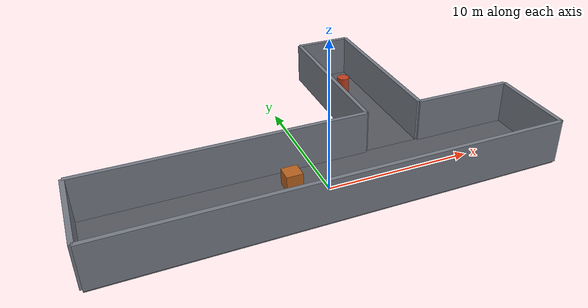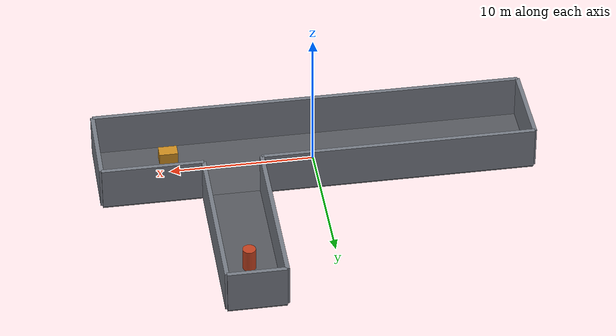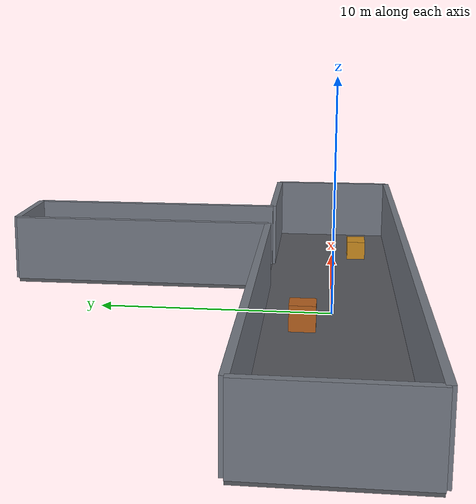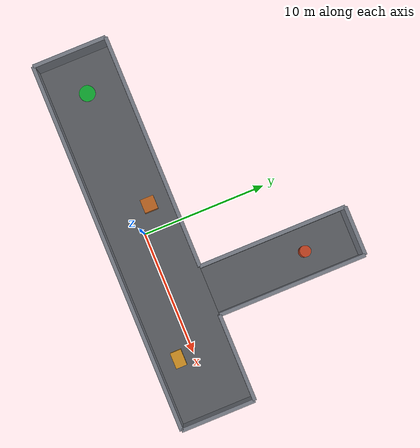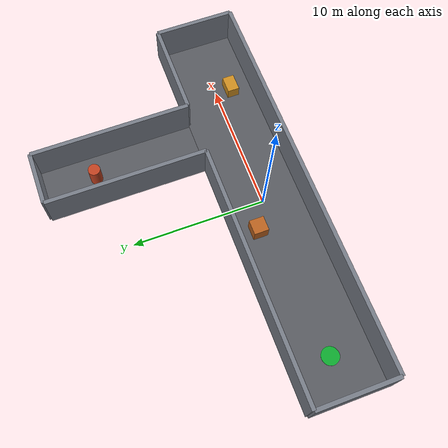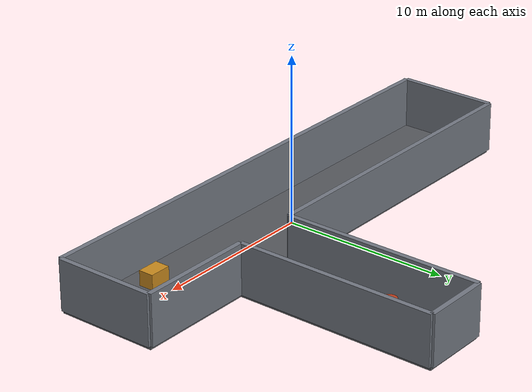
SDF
<?xml version="1.0" ?>
<sdf version="1.9">
  <world name="simple_cavern">
    <physics name="step" type="ignored">
      <max_step_size>0.001</max_step_size>
      <real_time_factor>1.0</real_time_factor>
    </physics>
    <plugin filename="gz-sim-physics-system" name="gz::sim::systems::Physics"/>
    <plugin filename="gz-sim-user-commands-system" name="gz::sim::systems::UserCommands"/>
    <plugin filename="gz-sim-scene-broadcaster-system" name="gz::sim::systems::SceneBroadcaster"/>

    <gui fullscreen="false">
      <plugin filename="MinimalScene" name="3D View">
        <gz-gui><title>简易地下洞室导航训练场</title></gz-gui>
        <engine>ogre2</engine>
        <scene>scene</scene>
        <ambient_light>0.35 0.37 0.42</ambient_light>
        <background_color>0.08 0.09 0.12</background_color>
        <camera_pose>0 4 38 0 1.5707 0</camera_pose>
      </plugin>
      <plugin filename="EntityContextMenuPlugin" name="Entity context menu">
        <gz-gui><property key="state" type="string">floating</property><property key="width" type="double">5</property><property key="height" type="double">5</property><property key="showTitleBar" type="bool">false</property></gz-gui>
      </plugin>
      <plugin filename="GzSceneManager" name="Scene Manager">
        <gz-gui><property key="state" type="string">floating</property><property key="width" type="double">5</property><property key="height" type="double">5</property><property key="showTitleBar" type="bool">false</property></gz-gui>
      </plugin>
      <plugin filename="InteractiveViewControl" name="Interactive view control">
        <gz-gui><property key="state" type="string">floating</property><property key="width" type="double">5</property><property key="height" type="double">5</property><property key="showTitleBar" type="bool">false</property></gz-gui>
      </plugin>
      <plugin filename="CameraTracking" name="Camera Tracking">
        <gz-gui><property key="state" type="string">floating</property><property key="width" type="double">5</property><property key="height" type="double">5</property><property key="showTitleBar" type="bool">false</property></gz-gui>
      </plugin>
    </gui>

    <scene>
      <ambient>0.35 0.37 0.42 1</ambient>
      <background>0.08 0.09 0.12 1</background>
      <shadows>true</shadows>
    </scene>
    <light type="directional" name="work_light">
      <pose>0 0 18 0 0 0</pose>
      <diffuse>0.75 0.78 0.85 1</diffuse>
      <specular>0.2 0.2 0.2 1</specular>
      <direction>-0.3 0.2 -1</direction>
    </light>

    <!-- Main passage: 30 m long and 6 m wide -->
    <model name="main_floor"><static>true</static><link name="link"><pose>0 0 -0.1 0 0 0</pose>
      <collision name="collision"><geometry><box><size>30 6 0.2</size></box></geometry></collision>
      <visual name="visual"><geometry><box><size>30 6 0.2</size></box></geometry><material><ambient>0.24 0.25 0.27 1</ambient><diffuse>0.34 0.35 0.37 1</diffuse></material></visual>
    </link></model>
    <!-- T branch floor -->
    <model name="branch_floor"><static>true</static><link name="link"><pose>6 9 -0.1 0 0 0</pose>
      <collision name="collision"><geometry><box><size>4 12 0.2</size></box></geometry></collision>
      <visual name="visual"><geometry><box><size>4 12 0.2</size></box></geometry><material><ambient>0.24 0.25 0.27 1</ambient><diffuse>0.34 0.35 0.37 1</diffuse></material></visual>
    </link></model>

    <!-- Concrete walls; north wall has a 4 m opening into the branch -->
    <model name="south_wall"><static>true</static><link name="link"><pose>0 -3 1.5 0 0 0</pose><collision name="c"><geometry><box><size>30 0.3 3</size></box></geometry></collision><visual name="v"><geometry><box><size>30 0.3 3</size></box></geometry><material><diffuse>0.46 0.48 0.52 1</diffuse></material></visual></link></model>
    <model name="north_wall_left"><static>true</static><link name="link"><pose>-5.5 3 1.5 0 0 0</pose><collision name="c"><geometry><box><size>19 0.3 3</size></box></geometry></collision><visual name="v"><geometry><box><size>19 0.3 3</size></box></geometry><material><diffuse>0.46 0.48 0.52 1</diffuse></material></visual></link></model>
    <model name="north_wall_right"><static>true</static><link name="link"><pose>11.5 3 1.5 0 0 0</pose><collision name="c"><geometry><box><size>7 0.3 3</size></box></geometry></collision><visual name="v"><geometry><box><size>7 0.3 3</size></box></geometry><material><diffuse>0.46 0.48 0.52 1</diffuse></material></visual></link></model>
    <model name="west_end"><static>true</static><link name="link"><pose>-15 0 1.5 0 0 0</pose><collision name="c"><geometry><box><size>0.3 6 3</size></box></geometry></collision><visual name="v"><geometry><box><size>0.3 6 3</size></box></geometry><material><diffuse>0.46 0.48 0.52 1</diffuse></material></visual></link></model>
    <model name="east_end"><static>true</static><link name="link"><pose>15 0 1.5 0 0 0</pose><collision name="c"><geometry><box><size>0.3 6 3</size></box></geometry></collision><visual name="v"><geometry><box><size>0.3 6 3</size></box></geometry><material><diffuse>0.46 0.48 0.52 1</diffuse></material></visual></link></model>
    <model name="branch_west"><static>true</static><link name="link"><pose>4 9 1.5 0 0 0</pose><collision name="c"><geometry><box><size>0.3 12 3</size></box></geometry></collision><visual name="v"><geometry><box><size>0.3 12 3</size></box></geometry><material><diffuse>0.46 0.48 0.52 1</diffuse></material></visual></link></model>
    <model name="branch_east"><static>true</static><link name="link"><pose>8 9 1.5 0 0 0</pose><collision name="c"><geometry><box><size>0.3 12 3</size></box></geometry></collision><visual name="v"><geometry><box><size>0.3 12 3</size></box></geometry><material><diffuse>0.46 0.48 0.52 1</diffuse></material></visual></link></model>
    <model name="branch_end"><static>true</static><link name="link"><pose>6 15 1.5 0 0 0</pose><collision name="c"><geometry><box><size>4 0.3 3</size></box></geometry></collision><visual name="v"><geometry><box><size>4 0.3 3</size></box></geometry><material><diffuse>0.46 0.48 0.52 1</diffuse></material></visual></link></model>

    <!-- Navigation landmarks / obstacles -->
    <model name="obstacle_crate_1"><static>true</static><pose>-2 1.2 0 0 0 0</pose><link name="link"><pose>0 0 0.55 0 0 0</pose><collision name="c"><geometry><box><size>1.1 1.1 1.1</size></box></geometry></collision><visual name="v"><geometry><box><size>1.1 1.1 1.1</size></box></geometry><material><diffuse>0.72 0.38 0.12 1</diffuse></material></visual></link></model>
    <model name="obstacle_crate_2"><static>true</static><pose>10 -1.25 0 0 0 0</pose><link name="link"><pose>0 0 0.45 0 0 0</pose><collision name="c"><geometry><box><size>1.3 0.9 0.9</size></box></geometry></collision><visual name="v"><geometry><box><size>1.3 0.9 0.9</size></box></geometry><material><diffuse>0.8 0.55 0.12 1</diffuse></material></visual></link></model>
    <model name="branch_pillar"><static>true</static><pose>6 11 0 0 0 0</pose><link name="link"><pose>0 0 0.8 0 0 0</pose><collision name="c"><geometry><cylinder><radius>0.45</radius><length>1.6</length></cylinder></geometry></collision><visual name="v"><geometry><cylinder><radius>0.45</radius><length>1.6</length></cylinder></geometry><material><diffuse>0.75 0.25 0.12 1</diffuse></material></visual></link></model>
    <model name="start_marker"><static>true</static><pose>-12 0 0.012 0 0 0</pose><link name="link"><visual name="v"><geometry><cylinder><radius>0.65</radius><length>0.02</length></cylinder></geometry><material><emissive>0.05 0.65 0.18 1</emissive><diffuse>0.05 0.65 0.18 1</diffuse></material></visual></link></model>
  </world>
</sdf>
